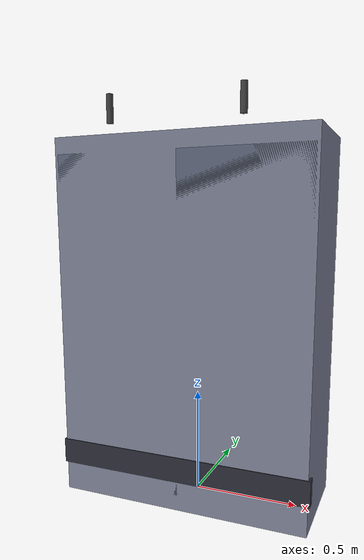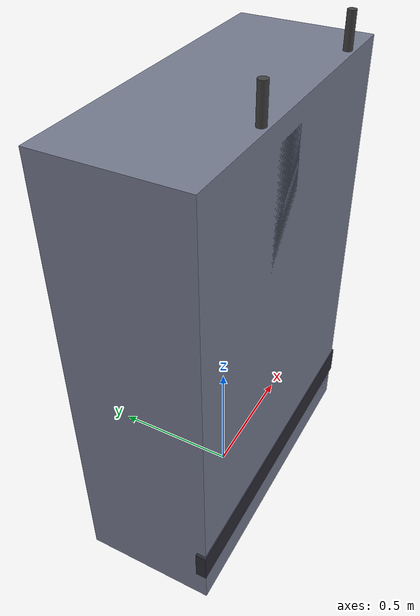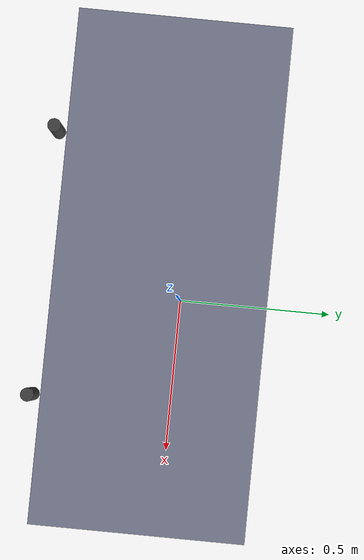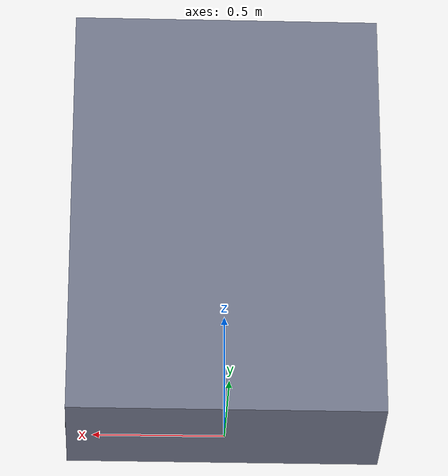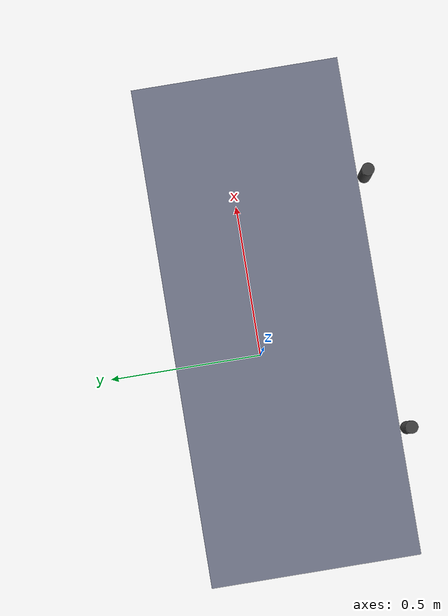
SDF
<?xml version="1.0" ?>
<sdf version='1.9'>
  <model name='office_cabinet'>
    <static>true</static>

    <link name='cabinet_body'>
      <pose>0 0 0.85 0 0 0</pose>

      <!-- Paint target / physics body: full cabinet shell -->
      <collision name='cabinet_collision'>
        <geometry>
          <box><size>1.2 0.5 1.7</size></box>
        </geometry>
      </collision>

      <!-- Shell (outer box, visible from every side) -->
      <visual name='cabinet_visual'>
        <geometry>
          <box><size>1.2 0.5 1.7</size></box>
        </geometry>
        <material>
          <ambient>0.30 0.32 0.38 1</ambient>
          <diffuse>0.46 0.48 0.56 1</diffuse>
          <specular>0.15 0.15 0.15 1</specular>
        </material>
      </visual>

      <!-- Left door panel – inset behind the collision face so paint is never hidden -->
      <visual name='door_left_visual'>
        <pose>-0.295 -0.24 0.0 0 0 0</pose>
        <geometry>
          <box><size>0.585 0.02 1.55</size></box>
        </geometry>
        <material>
          <ambient>0.22 0.24 0.30 1</ambient>
          <diffuse>0.35 0.38 0.46 1</diffuse>
          <specular>0.30 0.30 0.30 1</specular>
        </material>
      </visual>

      <!-- Right door panel -->
      <visual name='door_right_visual'>
        <pose>0.295 -0.24 0.0 0 0 0</pose>
        <geometry>
          <box><size>0.585 0.02 1.55</size></box>
        </geometry>
        <material>
          <ambient>0.22 0.24 0.30 1</ambient>
          <diffuse>0.35 0.38 0.46 1</diffuse>
          <specular>0.30 0.30 0.30 1</specular>
        </material>
      </visual>

      <!-- Door handles (proud; occlude paint only on their tiny footprint) -->
      <visual name='handle_left_visual'>
        <pose>-0.30 -0.262 0.95 0 0 0</pose>
        <geometry>
          <cylinder><radius>0.015</radius><length>0.12</length></cylinder>
        </geometry>
        <material>
          <ambient>0.10 0.10 0.10 1</ambient>
          <diffuse>0.25 0.25 0.25 1</diffuse>
          <specular>0.60 0.60 0.60 1</specular>
        </material>
      </visual>
      <visual name='handle_right_visual'>
        <pose>0.30 -0.262 0.95 0 0 0</pose>
        <geometry>
          <cylinder><radius>0.015</radius><length>0.12</length></cylinder>
        </geometry>
        <material>
          <ambient>0.10 0.10 0.10 1</ambient>
          <diffuse>0.25 0.25 0.25 1</diffuse>
          <specular>0.60 0.60 0.60 1</specular>
        </material>
      </visual>

      <!-- Dark base trim (inset, purely cosmetic) -->
      <visual name='base_trim_visual'>
        <pose>0.0 -0.235 -0.65 0 0 0</pose>
        <geometry>
          <box><size>1.22 0.04 0.12</size></box>
        </geometry>
        <material>
          <ambient>0.08 0.08 0.10 1</ambient>
          <diffuse>0.16 0.16 0.20 1</diffuse>
          <specular>0.05 0.05 0.05 1</specular>
        </material>
      </visual>
    </link>
  </model>
</sdf>
